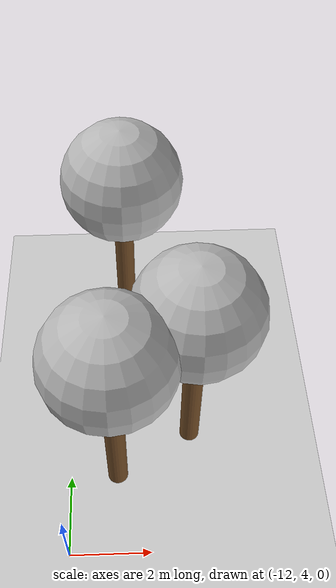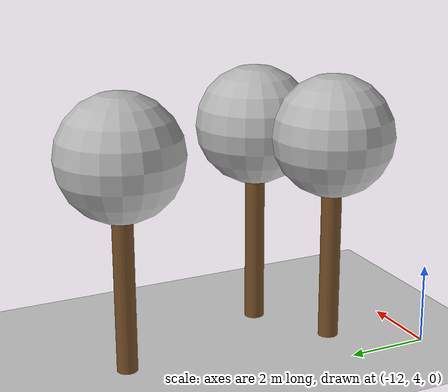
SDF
<sdf version="1.6">
 <world name="default">
  <model name="ground_plane">
   <static>1</static>
   <link name="link">
    <collision name="collision">
     <geometry><plane><normal>0 0 1</normal><size>100 100</size></plane></geometry>
     <surface><friction><ode><mu>100</mu><mu2>50</mu2></ode></friction></surface>
    </collision>
    <visual name="visual">
     <cast_shadows>0</cast_shadows>
     <geometry><plane><normal>0 0 1</normal><size>100 100</size></plane></geometry>
     <material>
      <script><uri>file://media/materials/scripts/gazebo.material</uri><name>Gazebo/Grey</name></script>
     </material>
    </visual>
   </link>
  </model>
  <model name="tree_simple">
   <static>1</static>
   <link name="link">
    <pose>0 0 0.1 0 -0 0</pose>
    <inertial>
     <mass>666</mass>
     <inertia>
      <ixx>0.0861167</ixx>
      <ixy>0</ixy>
      <ixz>0</ixz>
      <iyy>0.0861167</iyy>
      <iyz>0</iyz>
      <izz>0.0861167</izz>
     </inertia>
    </inertial>
    <collision name="collision_trunk">
     <pose>0 0 2 0 -0 0</pose>
     <geometry><cylinder><radius>0.25</radius><length>4</length></cylinder></geometry>
     <surface>
      <contact>
       <poissons_ratio>0.347</poissons_ratio>
       <elastic_modulus>8.8e+09</elastic_modulus>
       <ode><kp>100000</kp><kd>100</kd><max_vel>100</max_vel><min_depth>0.001</min_depth></ode>
      </contact>
      <friction>
       <torsional>
        <coefficient>1</coefficient>
        <use_patch_radius>0</use_patch_radius>
        <surface_radius>0.01</surface_radius>
       </torsional>
      </friction>
     </surface>
    </collision>
    <collision name="collision_treetop">
     <pose>0 0 5.2 0 -0 0</pose>
     <geometry><sphere><radius>1.5</radius></sphere></geometry>
     <surface>
      <contact>
       <poissons_ratio>0.347</poissons_ratio>
       <elastic_modulus>8.8e+09</elastic_modulus>
       <ode><kp>100000</kp><kd>100</kd><max_vel>100</max_vel><min_depth>0.001</min_depth></ode>
      </contact>
      <friction>
       <torsional>
        <coefficient>1</coefficient>
        <use_patch_radius>0</use_patch_radius>
        <surface_radius>0.01</surface_radius>
       </torsional>
      </friction>
     </surface>
    </collision>
    <visual name="trunk">
     <pose>0 0 2 0 -0 0</pose>
     <geometry><cylinder><radius>0.25</radius><length>4</length></cylinder></geometry>
     <material>
      <script>
       <uri>model://tree_simple/scripts</uri>
       <uri>model://tree_simple/materials/textures</uri>
       <name>TreeSimple/Trunk</name>
      </script>
     </material>
    </visual>
    <visual name="treetop">
     <pose>0 0 5.2 0 -0 0</pose>
     <geometry><sphere><radius>1.5</radius></sphere></geometry>
     <material>
      <script>
       <uri>model://tree_simple/scripts</uri>
       <uri>model://tree_simple/materials/textures</uri>
       <name>TreeSimple/Treetop</name>
      </script>
     </material>
    </visual>
   </link>
   <pose>-10.4753 11.3235 0 0 -0 0</pose>
  </model>
  <model name="tree_simple_0">
   <static>1</static>
   <link name="link">
    <pose>0 0 0.1 0 -0 0</pose>
    <inertial>
     <mass>666</mass>
     <inertia>
      <ixx>0.0861167</ixx>
      <ixy>0</ixy>
      <ixz>0</ixz>
      <iyy>0.0861167</iyy>
      <iyz>0</iyz>
      <izz>0.0861167</izz>
     </inertia>
    </inertial>
    <collision name="collision_trunk">
     <pose>0 0 2 0 -0 0</pose>
     <geometry><cylinder><radius>0.25</radius><length>4</length></cylinder></geometry>
     <surface>
      <contact>
       <poissons_ratio>0.347</poissons_ratio>
       <elastic_modulus>8.8e+09</elastic_modulus>
       <ode><kp>100000</kp><kd>100</kd><max_vel>100</max_vel><min_depth>0.001</min_depth></ode>
      </contact>
      <friction>
       <torsional>
        <coefficient>1</coefficient>
        <use_patch_radius>0</use_patch_radius>
        <surface_radius>0.01</surface_radius>
       </torsional>
      </friction>
     </surface>
    </collision>
    <collision name="collision_treetop">
     <pose>0 0 5.2 0 -0 0</pose>
     <geometry><sphere><radius>1.5</radius></sphere></geometry>
     <surface>
      <contact>
       <poissons_ratio>0.347</poissons_ratio>
       <elastic_modulus>8.8e+09</elastic_modulus>
       <ode><kp>100000</kp><kd>100</kd><max_vel>100</max_vel><min_depth>0.001</min_depth></ode>
      </contact>
      <friction>
       <torsional>
        <coefficient>1</coefficient>
        <use_patch_radius>0</use_patch_radius>
        <surface_radius>0.01</surface_radius>
       </torsional>
      </friction>
     </surface>
    </collision>
    <visual name="trunk">
     <pose>0 0 2 0 -0 0</pose>
     <geometry><cylinder><radius>0.25</radius><length>4</length></cylinder></geometry>
     <material>
      <script>
       <uri>model://tree_simple/scripts</uri>
       <uri>model://tree_simple/materials/textures</uri>
       <name>TreeSimple/Trunk</name>
      </script>
     </material>
    </visual>
    <visual name="treetop">
     <pose>0 0 5.2 0 -0 0</pose>
     <geometry><sphere><radius>1.5</radius></sphere></geometry>
     <material>
      <script>
       <uri>model://tree_simple/scripts</uri>
       <uri>model://tree_simple/materials/textures</uri>
       <name>TreeSimple/Treetop</name>
      </script>
     </material>
    </visual>
   </link>
   <pose>-10.8062 6.03275 0 0 -0 0</pose>
  </model>
  <model name="tree_simple_11">
   <static>1</static>
   <link name="link">
    <pose>0 0 0.1 0 -0 0</pose>
    <inertial>
     <mass>666</mass>
     <inertia>
      <ixx>0.0861167</ixx>
      <ixy>0</ixy>
      <ixz>0</ixz>
      <iyy>0.0861167</iyy>
      <iyz>0</iyz>
      <izz>0.0861167</izz>
     </inertia>
    </inertial>
    <collision name="collision_trunk">
     <pose>0 0 2 0 -0 0</pose>
     <geometry><cylinder><radius>0.25</radius><length>4</length></cylinder></geometry>
     <surface>
      <contact>
       <poissons_ratio>0.347</poissons_ratio>
       <elastic_modulus>8.8e+09</elastic_modulus>
       <ode><kp>100000</kp><kd>100</kd><max_vel>100</max_vel><min_depth>0.001</min_depth></ode>
      </contact>
      <friction>
       <torsional>
        <coefficient>1</coefficient>
        <use_patch_radius>0</use_patch_radius>
        <surface_radius>0.01</surface_radius>
       </torsional>
      </friction>
     </surface>
    </collision>
    <collision name="collision_treetop">
     <pose>0 0 5.2 0 -0 0</pose>
     <geometry><sphere><radius>1.5</radius></sphere></geometry>
     <surface>
      <contact>
       <poissons_ratio>0.347</poissons_ratio>
       <elastic_modulus>8.8e+09</elastic_modulus>
       <ode><kp>100000</kp><kd>100</kd><max_vel>100</max_vel><min_depth>0.001</min_depth></ode>
      </contact>
      <friction>
       <torsional>
        <coefficient>1</coefficient>
        <use_patch_radius>0</use_patch_radius>
        <surface_radius>0.01</surface_radius>
       </torsional>
      </friction>
     </surface>
    </collision>
    <visual name="trunk">
     <pose>0 0 2 0 -0 0</pose>
     <geometry><cylinder><radius>0.25</radius><length>4</length></cylinder></geometry>
     <material>
      <script>
       <uri>model://tree_simple/scripts</uri>
       <uri>model://tree_simple/materials/textures</uri>
       <name>TreeSimple/Trunk</name>
      </script>
     </material>
    </visual>
    <visual name="treetop">
     <pose>0 0 5.2 0 -0 0</pose>
     <geometry><sphere><radius>1.5</radius></sphere></geometry>
     <material>
      <script>
       <uri>model://tree_simple/scripts</uri>
       <uri>model://tree_simple/materials/textures</uri>
       <name>TreeSimple/Treetop</name>
      </script>
     </material>
    </visual>
   </link>
   <pose>-8.90783 7.17763 0 0 -0 0</pose>
  </model>
 </world>
</sdf>
